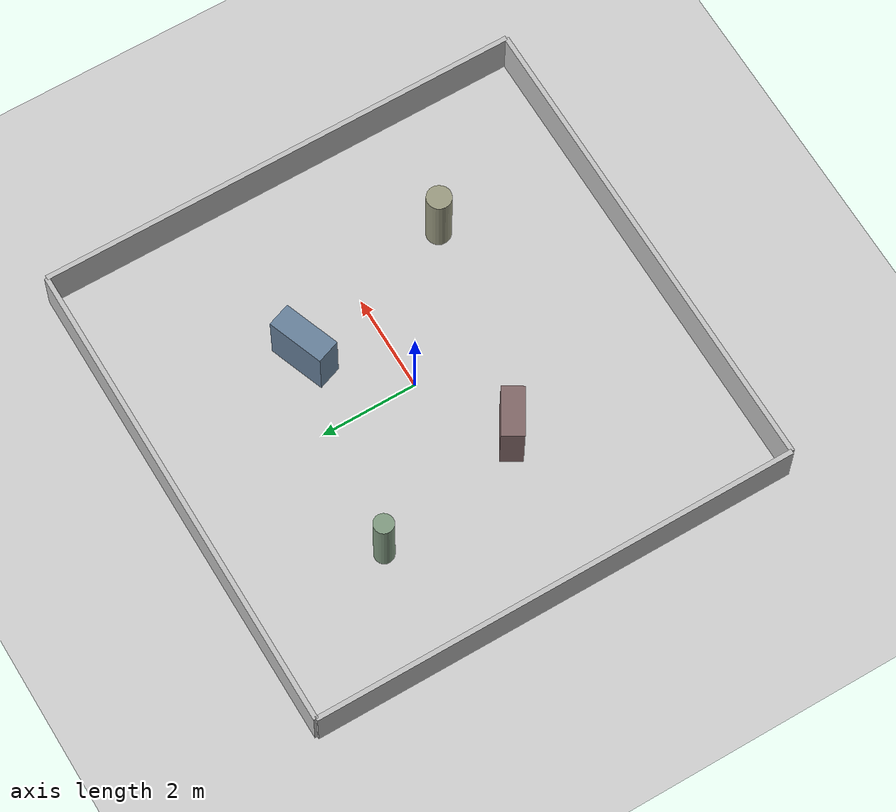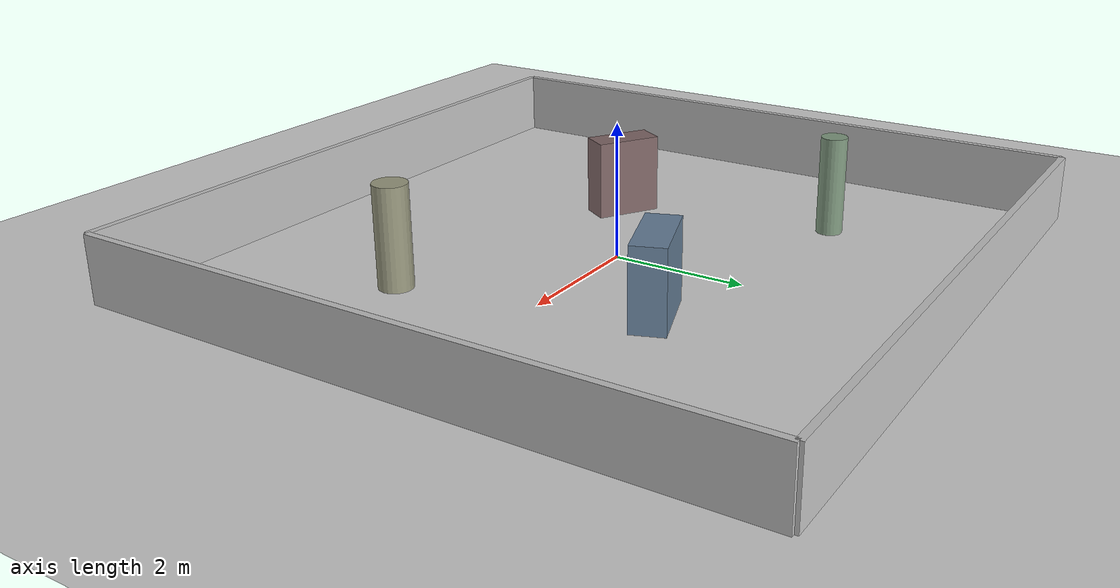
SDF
<sdf version="1.6">
 <world name="virtual_lab">
  <physics name="1ms" type="ignored">
   <max_step_size>0.001</max_step_size>
   <real_time_factor>1.0</real_time_factor>
  </physics>
  <plugin filename="gz-sim-physics-system" name="gz::sim::systems::Physics"/>
  <plugin filename="gz-sim-user-commands-system" name="gz::sim::systems::UserCommands"/>
  <plugin filename="gz-sim-scene-broadcaster-system" name="gz::sim::systems::SceneBroadcaster"/>
  <plugin filename="gz-sim-sensors-system" name="gz::sim::systems::Sensors">
   <render_engine>ogre2</render_engine>
  </plugin>
  <gravity>0 0 -9.81</gravity>
  <magnetic_field>6e-06 2.3e-05 -4.2e-05</magnetic_field>
  <light type="directional" name="sun">
   <pose>0 0 10 0 0 0</pose>
   <diffuse>0.8 0.8 0.8 1</diffuse>
   <specular>0.2 0.2 0.2 1</specular>
   <attenuation>
    <range>1000</range>
    <constant>0.9</constant>
    <linear>0.01</linear>
    <quadratic>0.001</quadratic>
   </attenuation>
   <direction>-0.5 0.1 -0.9</direction>
  </light>
  <model name="ground_plane">
   <static>true</static>
   <link name="link">
    <collision name="collision">
     <geometry><plane><normal>0 0 1</normal><size>100 100</size></plane></geometry>
    </collision>
    <visual name="visual">
     <geometry><plane><normal>0 0 1</normal><size>100 100</size></plane></geometry>
     <material>
      <ambient>0.8 0.8 0.8 1</ambient>
      <diffuse>0.8 0.8 0.8 1</diffuse>
      <specular>0.8 0.8 0.8 1</specular>
     </material>
    </visual>
   </link>
  </model>
  <model name="wall_north">
   <static>true</static>
   <pose>0 5 0.5 0 0 0</pose>
   <link name="link">
    <collision name="collision"><geometry><box><size>10.0 0.1 1.0</size></box></geometry></collision>
    <visual name="visual">
     <geometry><box><size>10.0 0.1 1.0</size></box></geometry>
     <material><ambient>0.75 0.75 0.75 1</ambient><diffuse>0.75 0.75 0.75 1</diffuse></material>
    </visual>
   </link>
  </model>
  <model name="wall_south">
   <static>true</static>
   <pose>0 -5 0.5 0 0 0</pose>
   <link name="link">
    <collision name="collision"><geometry><box><size>10.0 0.1 1.0</size></box></geometry></collision>
    <visual name="visual">
     <geometry><box><size>10.0 0.1 1.0</size></box></geometry>
     <material><ambient>0.75 0.75 0.75 1</ambient><diffuse>0.75 0.75 0.75 1</diffuse></material>
    </visual>
   </link>
  </model>
  <model name="wall_east">
   <static>true</static>
   <pose>5 0 0.5 0 0 0</pose>
   <link name="link">
    <collision name="collision"><geometry><box><size>0.1 10.0 1.0</size></box></geometry></collision>
    <visual name="visual">
     <geometry><box><size>0.1 10.0 1.0</size></box></geometry>
     <material><ambient>0.75 0.75 0.75 1</ambient><diffuse>0.75 0.75 0.75 1</diffuse></material>
    </visual>
   </link>
  </model>
  <model name="wall_west">
   <static>true</static>
   <pose>-5 0 0.5 0 0 0</pose>
   <link name="link">
    <collision name="collision"><geometry><box><size>0.1 10.0 1.0</size></box></geometry></collision>
    <visual name="visual">
     <geometry><box><size>0.1 10.0 1.0</size></box></geometry>
     <material><ambient>0.75 0.75 0.75 1</ambient><diffuse>0.75 0.75 0.75 1</diffuse></material>
    </visual>
   </link>
  </model>
  <model name="rack_a">
   <static>true</static>
   <pose>1.5 1.5 0.6 0 0 0.35</pose>
   <link name="link">
    <collision name="collision"><geometry><box><size>1.2 0.5 1.2</size></box></geometry></collision>
    <visual name="visual">
     <geometry><box><size>1.2 0.5 1.2</size></box></geometry>
     <material><ambient>0.4 0.5 0.6 1</ambient><diffuse>0.4 0.5 0.6 1</diffuse></material>
    </visual>
   </link>
  </model>
  <model name="rack_b">
   <static>true</static>
   <pose>-1.8 -1.0 0.6 0 0 -0.55</pose>
   <link name="link">
    <collision name="collision"><geometry><box><size>1.0 0.45 1.2</size></box></geometry></collision>
    <visual name="visual">
     <geometry><box><size>1.0 0.45 1.2</size></box></geometry>
     <material><ambient>0.5 0.4 0.4 1</ambient><diffuse>0.5 0.4 0.4 1</diffuse></material>
    </visual>
   </link>
  </model>
  <model name="pillar_1">
   <static>true</static>
   <pose>2.5 -2.0 0.75 0 0 0</pose>
   <link name="link">
    <collision name="collision">
     <geometry><cylinder><radius>0.25</radius><length>1.5</length></cylinder></geometry>
    </collision>
    <visual name="visual">
     <geometry><cylinder><radius>0.25</radius><length>1.5</length></cylinder></geometry>
     <material><ambient>0.6 0.6 0.5 1</ambient><diffuse>0.6 0.6 0.5 1</diffuse></material>
    </visual>
   </link>
  </model>
  <model name="pillar_2">
   <static>true</static>
   <pose>-2.6 2.2 0.75 0 0 0</pose>
   <link name="link">
    <collision name="collision">
     <geometry><cylinder><radius>0.2</radius><length>1.5</length></cylinder></geometry>
    </collision>
    <visual name="visual">
     <geometry><cylinder><radius>0.2</radius><length>1.5</length></cylinder></geometry>
     <material><ambient>0.5 0.6 0.5 1</ambient><diffuse>0.5 0.6 0.5 1</diffuse></material>
    </visual>
   </link>
  </model>
 </world>
</sdf>
